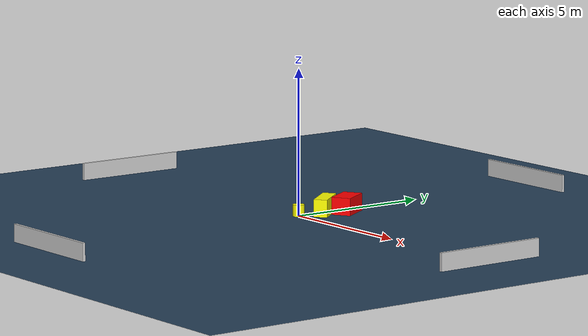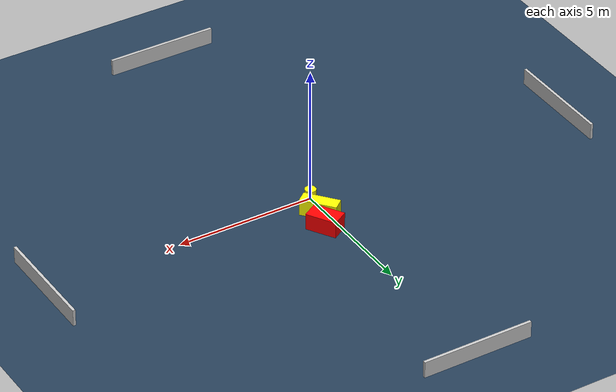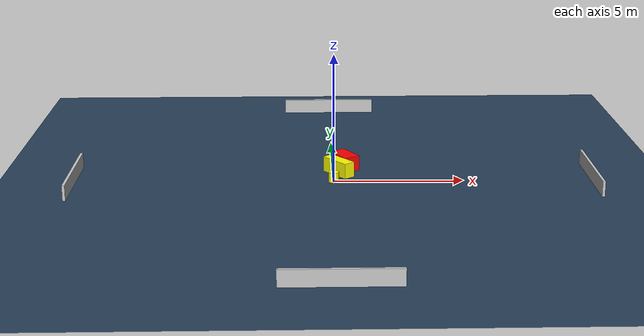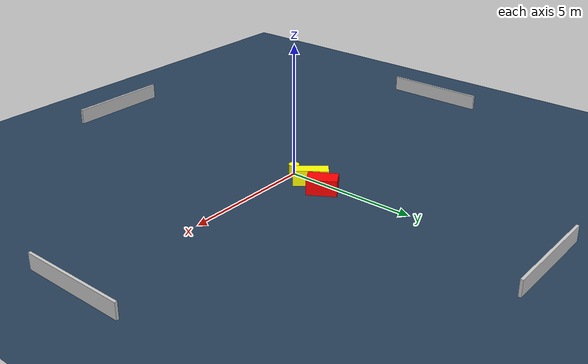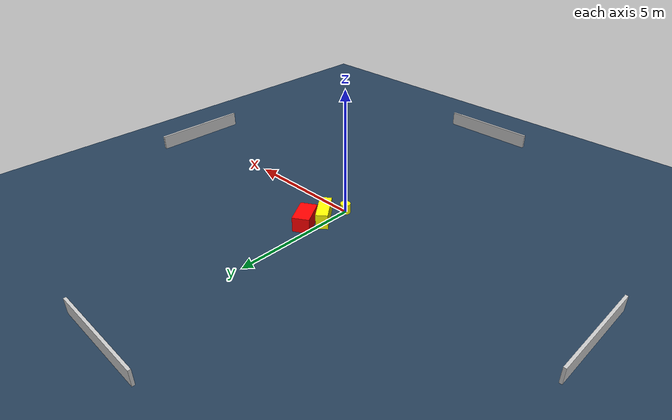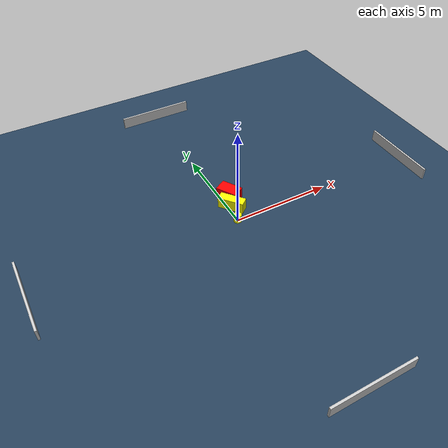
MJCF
<?xml version="1.0" ?>
<mujoco model="generated_environment">
  <option timestep="0.01" integrator="RK4" cone="elliptic"/>
  <default>
    <geom density="1"/>
  </default>
  <asset>
    <texture builtin="gradient" height="3072" name="skybox" rgb1="0.3 0.5 0.7" rgb2="0 0 0" type="skybox" width="512"/>
    <texture builtin="checker" height="300" name="groundplane" rgb1="0.2 0.3 0.4" rgb2="0.1 0.2 0.3" type="2d" width="300"/>
    <material name="groundplane" reflectance="0.2" texrepeat="5 5" texture="groundplane"/>
  </asset>
  <worldbody>
    <light dir="0 0 -1" directional="true" pos="0 0 1.5"/>
    <geom condim="3" friction="0.5 0.005 0.001" material="groundplane" name="floor" pos="0 0 0" size="0 0 0.05" type="plane"/>
    <body name="walls">
      <geom name="wall_1" condim="4" pos="-10.0 0.0 0.3" rgba="0.800000011920929 0.800000011920929 0.800000011920929 1.0" size="0.05 2.0 0.3" type="box"/>
      <geom name="wall_2" condim="4" pos="10.0 0.0 0.3" rgba="0.800000011920929 0.800000011920929 0.800000011920929 1.0" size="0.05 2.0 0.3" type="box"/>
      <geom name="wall_3" condim="4" pos="0.0 -10.0 0.3" rgba="0.800000011920929 0.800000011920929 0.800000011920929 1.0" size="2.0 0.05 0.3" type="box"/>
      <geom name="wall_4" condim="4" pos="0.0 10.0 0.3" rgba="0.800000011920929 0.800000011920929 0.800000011920929 1.0" size="2.0 0.05 0.3" type="box"/>
    </body>
    <body name="robot">
      <joint name="joint_x" type="slide" pos="0 0 0" axis="1 0 0"/>
      <joint name="joint_y" type="slide" pos="0 0 0" axis="0 1 0"/>
      <geom name="robot" type="cylinder" pos="0.0 0.0 0.2" size="0.2 0.2 0.0" mass="5.0" friction="1.0 0.005 0.0001" condim="4" rgba="1.0 1.0 0.0 1.0"/>
    </body>
    <body name="obstacle_1_movable">
      <geom name="obstacle_1_movable" condim="4" pos="0.21355998377090687 0.950144803682266 0.3" euler="0 0 38.936678835031586" friction="0.0 0.005 0.001" rgba="1.0 1.0 0.0 1.0" size="0.232403823718753 0.6548074037175832 0.3" type="box" mass="0.1"/>
      <joint type="free"/>
    </body>
    <body name="obstacle_2_static">
      <geom name="obstacle_2_static" condim="4" pos="0.46718323567906433 1.68544870469919 0.3" euler="0 0 301.04575207001625" friction="0.0 0.005 0.001" rgba="1.0 0.0 0.0 1.0" size="0.555248417639837 0.33264604141248 0.3" type="box"/>
    </body>
  </worldbody>
  <actuator>
    <motor name="actuator_x" joint="joint_x" gear="1" ctrlrange="-1 1"/>
    <motor name="actuator_y" joint="joint_y" gear="1" ctrlrange="-1 1"/>
  </actuator>
</mujoco>
